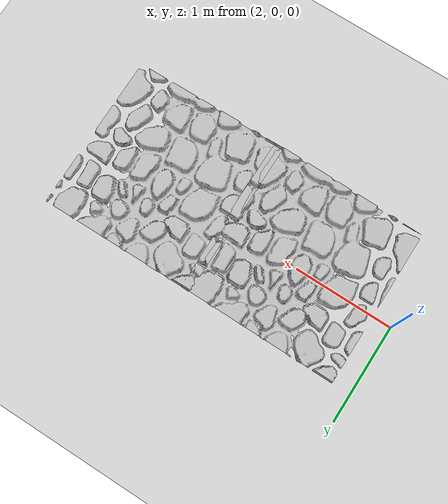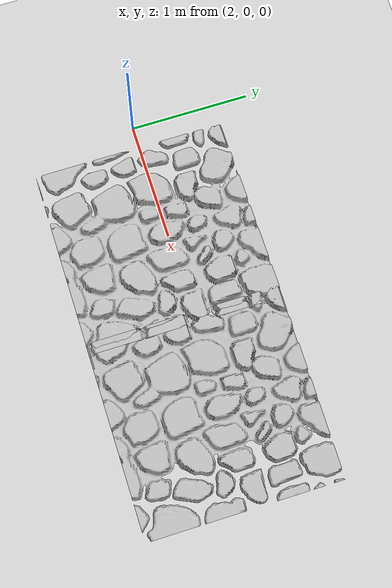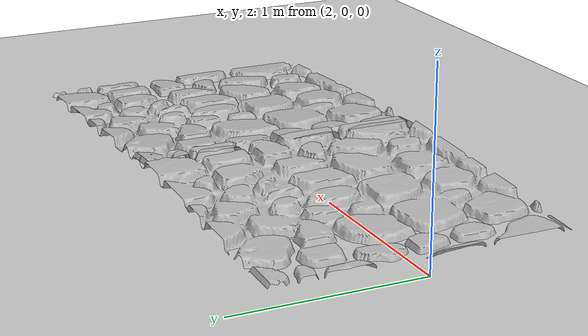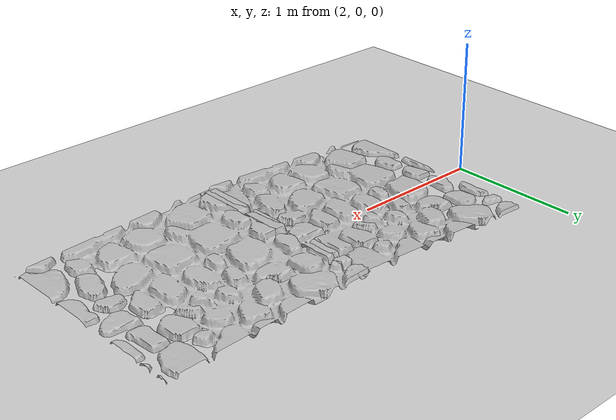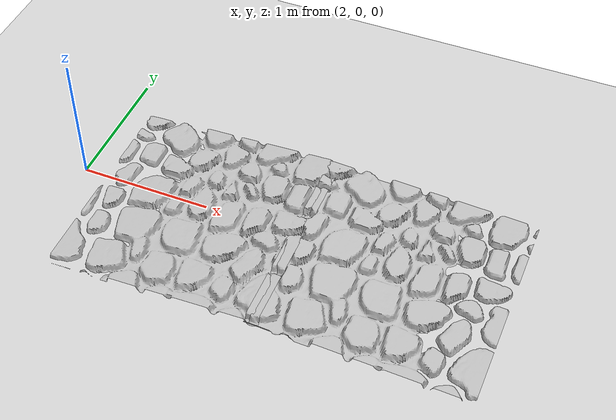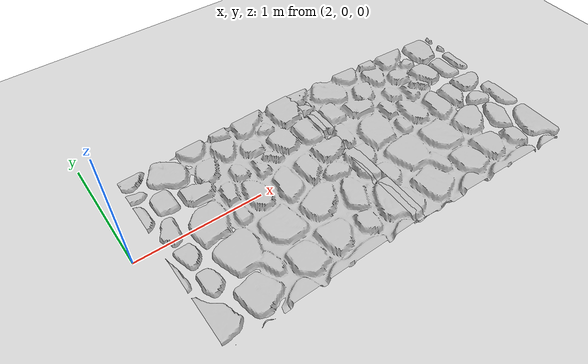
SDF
<?xml version="1.0" ?>
<sdf version="1.4">
  <world name="default">
    <physics type='ode'>
      <gravity>0 0 -9.81</gravity>
      <!-- max step size has to be a multiple of the desired task rate-->
      <max_step_size>0.001</max_step_size>
      <real_time_factor>1</real_time_factor>
    </physics>
    <!-- A global light source -->
    <include>
      <uri>model://sun</uri>
    </include>
    <!-- A ground plane -->
    <include>
      <uri>model://ground_plane</uri>
    </include>
    <include>
      <name>cobblestones</name>
      <uri>model://cobblestones_2</uri>
      <pose>3 0  -0.04 0.05 0 -1.57</pose>
    </include>
    <include>
      <name>cobblestones2</name>
      <uri>model://cobblestones_2</uri>
      <pose>4.5 0  -0.04 -0.05 0 -1.57</pose>
    </include>

  </world>
</sdf>

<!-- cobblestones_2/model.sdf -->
<sdf version="1.4">
	<model name="cobblestones">
		<static>true</static>
		<link name="link">
			<pose>0 0 -0.05 0 0 0</pose>
			<collision name="collision">
				<geometry>
					<mesh>
						<uri>model://cobblestones_2/mesh/cobblestones.dae</uri>
						<scale>0.175 0.175 0.35</scale>
					</mesh>
				</geometry>
				<surface>
					<bounce>
						<restitution_coefficient>0.01</restitution_coefficient>
						<threshold>5.0</threshold>
					</bounce>
					<friction>
						<ode>
							<mu>10</mu>
							<mu2>10</mu2>
						</ode>
					</friction>
					<contact>
						<ode>
							<soft_cfm>0.001</soft_cfm>
							<kp>100000.0</kp>
							<kd>1000.0</kd>
						</ode>
					</contact>
				</surface>
			</collision>
			<visual name="visual">
				<geometry>
					<mesh>
						<uri>model://cobblestones_2/mesh/cobblestones.dae</uri>
						<scale>0.175 0.175 0.35</scale>
					</mesh>
				</geometry>
			</visual>
		</link>
	</model>
</sdf>
